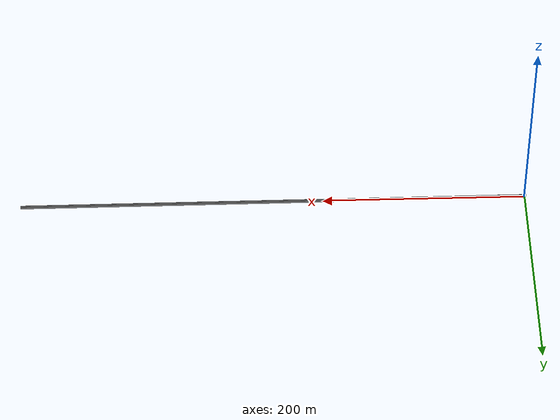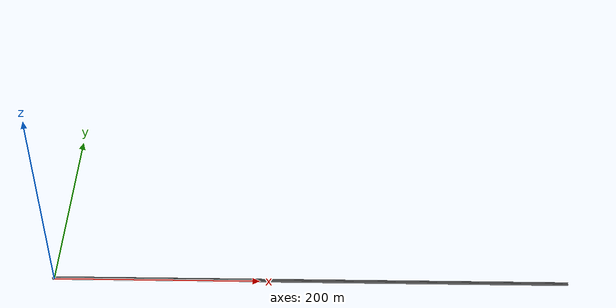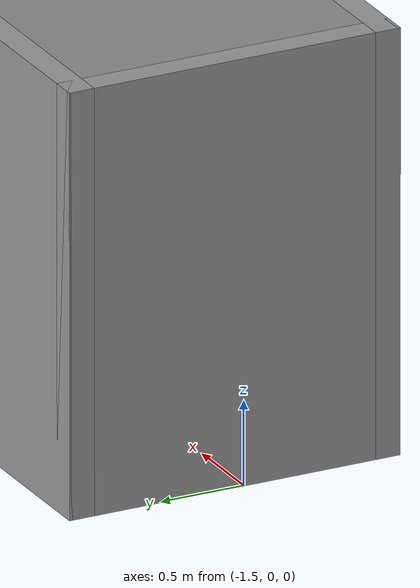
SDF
<?xml version='1.0'?>
<sdf version='1.6'>
  <model name='LongTube'>
    <pose frame=''>248.495 0.055 0 0 -0 0</pose>
    <link name='Wall_6'>
      <collision name='Wall_6_Collision'>
        <geometry>
          <box>
            <size>2 0.15 2.5</size>
          </box>
        </geometry>
        <pose frame=''>0 0 1.25 0 -0 0</pose>
      </collision>
      <visual name='Wall_6_Visual'>
        <pose frame=''>0 0 1.25 0 -0 0</pose>
        <geometry>
          <box>
            <size>2 0.15 2.5</size>
          </box>
        </geometry>
        <material>
          <script>
            <uri>file://media/materials/scripts/gazebo.material</uri>
            <name>Gazebo/Grey</name>
          </script>
          <ambient>1 1 1 1</ambient>
        </material>
      </visual>
      <pose frame=''>-249.925 0 0 0 -0 1.5708</pose>
    </link>
    <link name='Wall_7'>
      <collision name='Wall_7_Collision'>
        <geometry>
          <box>
            <size>500 0.15 2.5</size>
          </box>
        </geometry>
        <pose frame=''>0 0 1.25 0 -0 0</pose>
      </collision>
      <visual name='Wall_7_Visual'>
        <pose frame=''>0 0 1.25 0 -0 0</pose>
        <geometry>
          <box>
            <size>500 0.15 2.5</size>
          </box>
        </geometry>
        <material>
          <script>
            <uri>file://media/materials/scripts/gazebo.material</uri>
            <name>Gazebo/Grey</name>
          </script>
          <ambient>1 1 1 1</ambient>
        </material>
      </visual>
      <pose frame=''>0 0.925 0 0 -0 0</pose>
    </link>
    <link name='Wall_9'>
      <collision name='Wall_9_Collision'>
        <geometry>
          <box>
            <size>500 0.15 2.5</size>
          </box>
        </geometry>
        <pose frame=''>0 0 1.25 0 -0 0</pose>
      </collision>
      <visual name='Wall_9_Visual'>
        <pose frame=''>0 0 1.25 0 -0 0</pose>
        <geometry>
          <box>
            <size>500 0.15 2.5</size>
          </box>
        </geometry>
        <material>
          <script>
            <uri>file://media/materials/scripts/gazebo.material</uri>
            <name>Gazebo/Grey</name>
          </script>
          <ambient>1 1 1 1</ambient>
        </material>
      </visual>
      <pose frame=''>0 -0.925 0 0 -0 0</pose>
    </link>
    <static>1</static>
  </model>
</sdf>
